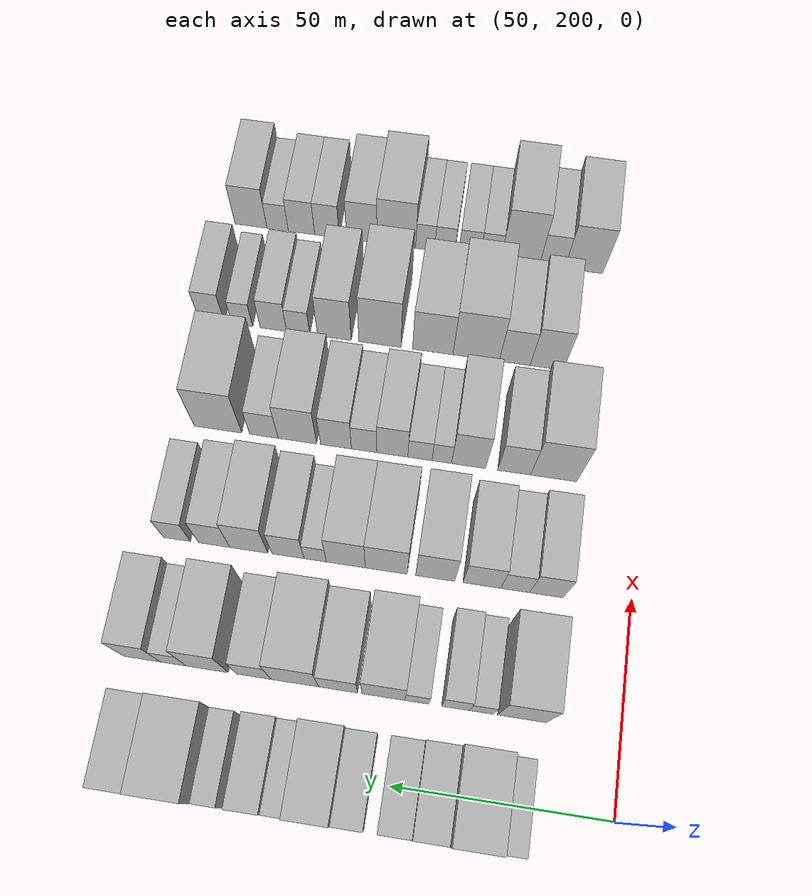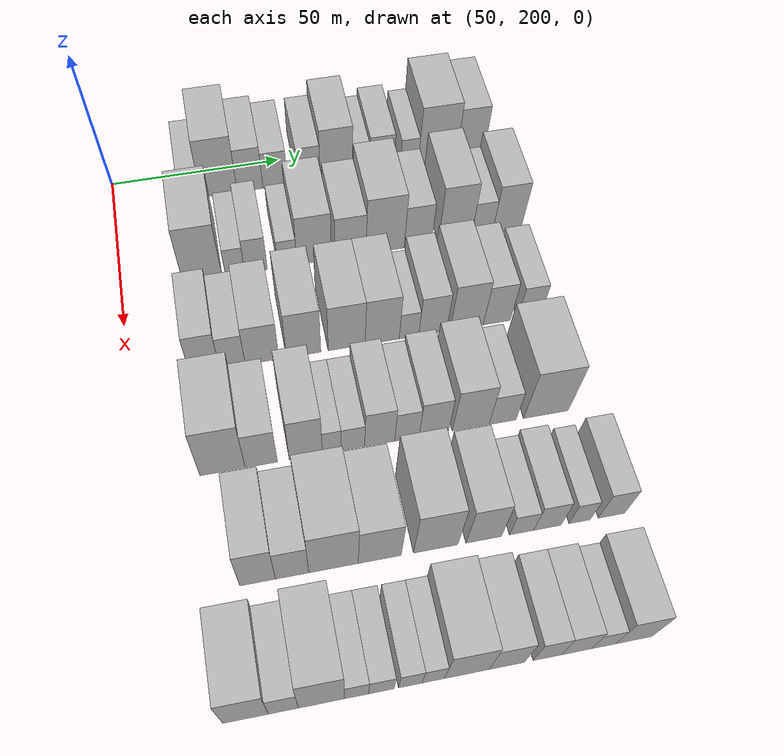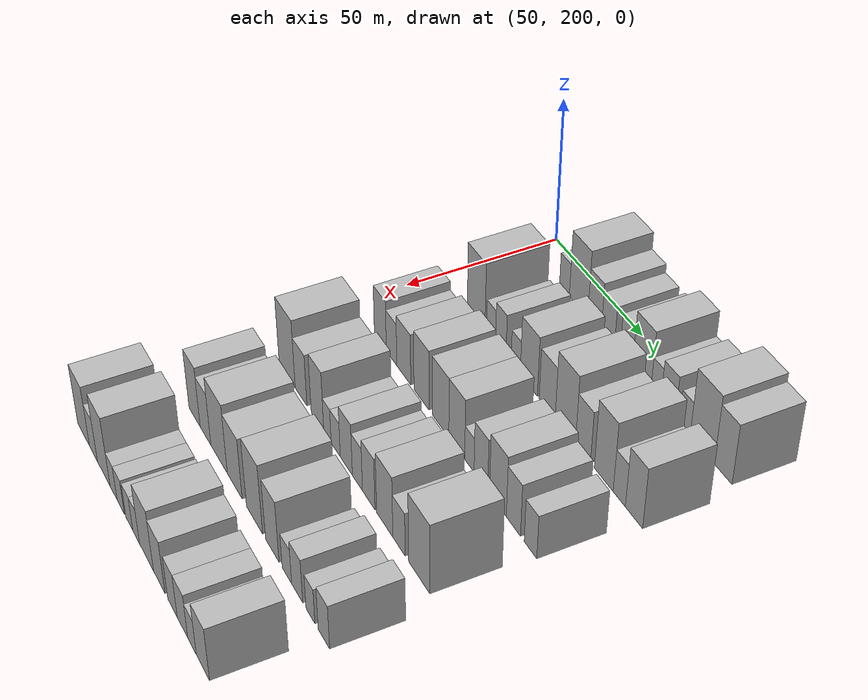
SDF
<sdf version="1.6">
 <world name="default">
  <model name="building_82">
   <static>1</static>
   <pose>50.0000 222.5530 0 0.000000 0.000000 0.000000</pose>
   <link name="link">
    <pose>0 0 6.00 0 0 0</pose>
    <collision name="collision"><geometry><box><size>20.0000 5.8281 12.0000</size></box></geometry></collision>
    <visual name="visual">
     <cast_shadows>0</cast_shadows>
     <geometry><box><size>20.0000 5.8281 12.0000</size></box></geometry>
     <material>
      <script>
       <uri>model://HANNAS_wall/materials/scripts</uri>
       <uri>model://HANNAS_wall/materials/textures</uri>
       <name>vrc/HANNAS_wall</name>
      </script>
     </material>
    </visual>
   </link>
  </model>
  <model name="building_83">
   <static>1</static>
   <pose>50.0000 230.8259 0 0.000000 0.000000 0.000000</pose>
   <link name="link">
    <pose>0 0 12.00 0 0 0</pose>
    <collision name="collision"><geometry><box><size>20.0000 10.7177 24.0000</size></box></geometry></collision>
    <visual name="visual">
     <cast_shadows>0</cast_shadows>
     <geometry><box><size>20.0000 10.7177 24.0000</size></box></geometry>
     <material>
      <script>
       <uri>model://HANNAS_wall/materials/scripts</uri>
       <uri>model://HANNAS_wall/materials/textures</uri>
       <name>vrc/HANNAS_wall</name>
      </script>
     </material>
    </visual>
   </link>
  </model>
  <model name="building_84">
   <static>1</static>
   <pose>50.0000 240.0393 0 0.000000 0.000000 0.000000</pose>
   <link name="link">
    <pose>0 0 9.00 0 0 0</pose>
    <collision name="collision"><geometry><box><size>20.0000 7.7092 18.0000</size></box></geometry></collision>
    <visual name="visual">
     <cast_shadows>0</cast_shadows>
     <geometry><box><size>20.0000 7.7092 18.0000</size></box></geometry>
     <material>
      <script>
       <uri>model://HANNAS_wall/materials/scripts</uri>
       <uri>model://HANNAS_wall/materials/textures</uri>
       <name>vrc/HANNAS_wall</name>
      </script>
     </material>
    </visual>
   </link>
  </model>
  <model name="building_85">
   <static>1</static>
   <pose>50.0000 247.5469 0 0.000000 0.000000 0.000000</pose>
   <link name="link">
    <pose>0 0 7.50 0 0 0</pose>
    <collision name="collision"><geometry><box><size>20.0000 7.3059 15.0000</size></box></geometry></collision>
    <visual name="visual">
     <cast_shadows>0</cast_shadows>
     <geometry><box><size>20.0000 7.3059 15.0000</size></box></geometry>
     <material>
      <script>
       <uri>model://HANNAS_wall/materials/scripts</uri>
       <uri>model://HANNAS_wall/materials/textures</uri>
       <name>vrc/HANNAS_wall</name>
      </script>
     </material>
    </visual>
   </link>
  </model>
  <model name="building_86">
   <static>1</static>
   <pose>50.0000 257.6532 0 0.000000 0.000000 0.000000</pose>
   <link name="link">
    <pose>0 0 7.50 0 0 0</pose>
    <collision name="collision"><geometry><box><size>20.0000 6.9068 15.0000</size></box></geometry></collision>
    <visual name="visual">
     <cast_shadows>0</cast_shadows>
     <geometry><box><size>20.0000 6.9068 15.0000</size></box></geometry>
     <material>
      <script>
       <uri>model://HANNAS_wall/materials/scripts</uri>
       <uri>model://HANNAS_wall/materials/textures</uri>
       <name>vrc/HANNAS_wall</name>
      </script>
     </material>
    </visual>
   </link>
  </model>
  <model name="building_87">
   <static>1</static>
   <pose>50.0000 266.0132 0 0.000000 0.000000 0.000000</pose>
   <link name="link">
    <pose>0 0 10.50 0 0 0</pose>
    <collision name="collision"><geometry><box><size>20.0000 9.8132 21.0000</size></box></geometry></collision>
    <visual name="visual">
     <cast_shadows>0</cast_shadows>
     <geometry><box><size>20.0000 9.8132 21.0000</size></box></geometry>
     <material>
      <script>
       <uri>model://HANNAS_wall/materials/scripts</uri>
       <uri>model://HANNAS_wall/materials/textures</uri>
       <name>vrc/HANNAS_wall</name>
      </script>
     </material>
    </visual>
   </link>
  </model>
  <model name="building_88">
   <static>1</static>
   <pose>50.0000 273.5310 0 0.000000 0.000000 0.000000</pose>
   <link name="link">
    <pose>0 0 6.00 0 0 0</pose>
    <collision name="collision"><geometry><box><size>20.0000 5.2224 12.0000</size></box></geometry></collision>
    <visual name="visual">
     <cast_shadows>0</cast_shadows>
     <geometry><box><size>20.0000 5.2224 12.0000</size></box></geometry>
     <material>
      <script>
       <uri>model://HANNAS_wall/materials/scripts</uri>
       <uri>model://HANNAS_wall/materials/textures</uri>
       <name>vrc/HANNAS_wall</name>
      </script>
     </material>
    </visual>
   </link>
  </model>
  <model name="building_89">
   <static>1</static>
   <pose>50.0000 279.8718 0 0.000000 0.000000 0.000000</pose>
   <link name="link">
    <pose>0 0 7.50 0 0 0</pose>
    <collision name="collision"><geometry><box><size>20.0000 7.4591 15.0000</size></box></geometry></collision>
    <visual name="visual">
     <cast_shadows>0</cast_shadows>
     <geometry><box><size>20.0000 7.4591 15.0000</size></box></geometry>
     <material>
      <script>
       <uri>model://HANNAS_wall/materials/scripts</uri>
       <uri>model://HANNAS_wall/materials/textures</uri>
       <name>vrc/HANNAS_wall</name>
      </script>
     </material>
    </visual>
   </link>
  </model>
  <model name="building_90">
   <static>1</static>
   <pose>50.0000 288.3421 0 0.000000 0.000000 0.000000</pose>
   <link name="link">
    <pose>0 0 6.00 0 0 0</pose>
    <collision name="collision"><geometry><box><size>20.0000 5.4815 12.0000</size></box></geometry></collision>
    <visual name="visual">
     <cast_shadows>0</cast_shadows>
     <geometry><box><size>20.0000 5.4815 12.0000</size></box></geometry>
     <material>
      <script>
       <uri>model://HANNAS_wall/materials/scripts</uri>
       <uri>model://HANNAS_wall/materials/textures</uri>
       <name>vrc/HANNAS_wall</name>
      </script>
     </material>
    </visual>
   </link>
  </model>
  <model name="building_91">
   <static>1</static>
   <pose>50.0000 296.9958 0 0.000000 0.000000 0.000000</pose>
   <link name="link">
    <pose>0 0 12.00 0 0 0</pose>
    <collision name="collision"><geometry><box><size>20.0000 11.8260 24.0000</size></box></geometry></collision>
    <visual name="visual">
     <cast_shadows>0</cast_shadows>
     <geometry><box><size>20.0000 11.8260 24.0000</size></box></geometry>
     <material>
      <script>
       <uri>model://HANNAS_wall/materials/scripts</uri>
       <uri>model://HANNAS_wall/materials/textures</uri>
       <name>vrc/HANNAS_wall</name>
      </script>
     </material>
    </visual>
   </link>
  </model>
  <model name="building_92">
   <static>1</static>
   <pose>50.0000 307.1721 0 0.000000 0.000000 0.000000</pose>
   <link name="link">
    <pose>0 0 10.50 0 0 0</pose>
    <collision name="collision"><geometry><box><size>20.0000 8.5265 21.0000</size></box></geometry></collision>
    <visual name="visual">
     <cast_shadows>0</cast_shadows>
     <geometry><box><size>20.0000 8.5265 21.0000</size></box></geometry>
     <material>
      <script>
       <uri>model://HANNAS_wall/materials/scripts</uri>
       <uri>model://HANNAS_wall/materials/textures</uri>
       <name>vrc/HANNAS_wall</name>
      </script>
     </material>
    </visual>
   </link>
  </model>
  <model name="building_186">
   <static>1</static>
   <pose>79.0000 222.6134 0 0.000000 0.000000 0.000000</pose>
   <link name="link">
    <pose>0 0 12.00 0 0 0</pose>
    <collision name="collision"><geometry><box><size>20.0000 10.9888 24.0000</size></box></geometry></collision>
    <visual name="visual">
     <cast_shadows>0</cast_shadows>
     <geometry><box><size>20.0000 10.9888 24.0000</size></box></geometry>
     <material>
      <script>
       <uri>model://HANNAS_wall/materials/scripts</uri>
       <uri>model://HANNAS_wall/materials/textures</uri>
       <name>vrc/HANNAS_wall</name>
      </script>
     </material>
    </visual>
   </link>
  </model>
  <model name="building_187">
   <static>1</static>
   <pose>79.0000 231.8289 0 0.000000 0.000000 0.000000</pose>
   <link name="link">
    <pose>0 0 6.00 0 0 0</pose>
    <collision name="collision"><geometry><box><size>20.0000 5.4422 12.0000</size></box></geometry></collision>
    <visual name="visual">
     <cast_shadows>0</cast_shadows>
     <geometry><box><size>20.0000 5.4422 12.0000</size></box></geometry>
     <material>
      <script>
       <uri>model://HANNAS_wall/materials/scripts</uri>
       <uri>model://HANNAS_wall/materials/textures</uri>
       <name>vrc/HANNAS_wall</name>
      </script>
     </material>
    </visual>
   </link>
  </model>
  <model name="building_188">
   <static>1</static>
   <pose>79.0000 237.7253 0 0.000000 0.000000 0.000000</pose>
   <link name="link">
    <pose>0 0 7.50 0 0 0</pose>
    <collision name="collision"><geometry><box><size>20.0000 6.3506 15.0000</size></box></geometry></collision>
    <visual name="visual">
     <cast_shadows>0</cast_shadows>
     <geometry><box><size>20.0000 6.3506 15.0000</size></box></geometry>
     <material>
      <script>
       <uri>model://HANNAS_wall/materials/scripts</uri>
       <uri>model://HANNAS_wall/materials/textures</uri>
       <name>vrc/HANNAS_wall</name>
      </script>
     </material>
    </visual>
   </link>
  </model>
  <model name="building_189">
   <static>1</static>
   <pose>79.0000 246.6190 0 0.000000 0.000000 0.000000</pose>
   <link name="link">
    <pose>0 0 6.00 0 0 0</pose>
    <collision name="collision"><geometry><box><size>20.0000 5.4369 12.0000</size></box></geometry></collision>
    <visual name="visual">
     <cast_shadows>0</cast_shadows>
     <geometry><box><size>20.0000 5.4369 12.0000</size></box></geometry>
     <material>
      <script>
       <uri>model://HANNAS_wall/materials/scripts</uri>
       <uri>model://HANNAS_wall/materials/textures</uri>
       <name>vrc/HANNAS_wall</name>
      </script>
     </material>
    </visual>
   </link>
  </model>
  <model name="building_190">
   <static>1</static>
   <pose>79.0000 254.2797 0 0.000000 0.000000 0.000000</pose>
   <link name="link">
    <pose>0 0 10.50 0 0 0</pose>
    <collision name="collision"><geometry><box><size>20.0000 9.8844 21.0000</size></box></geometry></collision>
    <visual name="visual">
     <cast_shadows>0</cast_shadows>
     <geometry><box><size>20.0000 9.8844 21.0000</size></box></geometry>
     <material>
      <script>
       <uri>model://HANNAS_wall/materials/scripts</uri>
       <uri>model://HANNAS_wall/materials/textures</uri>
       <name>vrc/HANNAS_wall</name>
      </script>
     </material>
    </visual>
   </link>
  </model>
  <model name="building_191">
   <static>1</static>
   <pose>79.0000 264.7175 0 0.000000 0.000000 0.000000</pose>
   <link name="link">
    <pose>0 0 9.00 0 0 0</pose>
    <collision name="collision"><geometry><box><size>20.0000 8.9913 18.0000</size></box></geometry></collision>
    <visual name="visual">
     <cast_shadows>0</cast_shadows>
     <geometry><box><size>20.0000 8.9913 18.0000</size></box></geometry>
     <material>
      <script>
       <uri>model://HANNAS_wall/materials/scripts</uri>
       <uri>model://HANNAS_wall/materials/textures</uri>
       <name>vrc/HANNAS_wall</name>
      </script>
     </material>
    </visual>
   </link>
  </model>
  <model name="building_192">
   <static>1</static>
   <pose>79.0000 274.7590 0 0.000000 0.000000 0.000000</pose>
   <link name="link">
    <pose>0 0 12.00 0 0 0</pose>
    <collision name="collision"><geometry><box><size>20.0000 11.0916 24.0000</size></box></geometry></collision>
    <visual name="visual">
     <cast_shadows>0</cast_shadows>
     <geometry><box><size>20.0000 11.0916 24.0000</size></box></geometry>
     <material>
      <script>
       <uri>model://HANNAS_wall/materials/scripts</uri>
       <uri>model://HANNAS_wall/materials/textures</uri>
       <name>vrc/HANNAS_wall</name>
      </script>
     </material>
    </visual>
   </link>
  </model>
  <model name="building_193">
   <static>1</static>
   <pose>79.0000 284.3001 0 0.000000 0.000000 0.000000</pose>
   <link name="link">
    <pose>0 0 9.00 0 0 0</pose>
    <collision name="collision"><geometry><box><size>20.0000 7.9905 18.0000</size></box></geometry></collision>
    <visual name="visual">
     <cast_shadows>0</cast_shadows>
     <geometry><box><size>20.0000 7.9905 18.0000</size></box></geometry>
     <material>
      <script>
       <uri>model://HANNAS_wall/materials/scripts</uri>
       <uri>model://HANNAS_wall/materials/textures</uri>
       <name>vrc/HANNAS_wall</name>
      </script>
     </material>
    </visual>
   </link>
  </model>
  <model name="building_194">
   <static>1</static>
   <pose>79.0000 295.1735 0 0.000000 0.000000 0.000000</pose>
   <link name="link">
    <pose>0 0 12.00 0 0 0</pose>
    <collision name="collision"><geometry><box><size>20.0000 9.7564 24.0000</size></box></geometry></collision>
    <visual name="visual">
     <cast_shadows>0</cast_shadows>
     <geometry><box><size>20.0000 9.7564 24.0000</size></box></geometry>
     <material>
      <script>
       <uri>model://HANNAS_wall/materials/scripts</uri>
       <uri>model://HANNAS_wall/materials/textures</uri>
       <name>vrc/HANNAS_wall</name>
      </script>
     </material>
    </visual>
   </link>
  </model>
  <model name="building_195">
   <static>1</static>
   <pose>79.0000 303.1252 0 0.000000 0.000000 0.000000</pose>
   <link name="link">
    <pose>0 0 7.50 0 0 0</pose>
    <collision name="collision"><geometry><box><size>20.0000 6.1470 15.0000</size></box></geometry></collision>
    <visual name="visual">
     <cast_shadows>0</cast_shadows>
     <geometry><box><size>20.0000 6.1470 15.0000</size></box></geometry>
     <material>
      <script>
       <uri>model://HANNAS_wall/materials/scripts</uri>
       <uri>model://HANNAS_wall/materials/textures</uri>
       <name>vrc/HANNAS_wall</name>
      </script>
     </material>
    </visual>
   </link>
  </model>
  <model name="building_196">
   <static>1</static>
   <pose>79.0000 310.4824 0 0.000000 0.000000 0.000000</pose>
   <link name="link">
    <pose>0 0 10.50 0 0 0</pose>
    <collision name="collision"><geometry><box><size>20.0000 8.5674 21.0000</size></box></geometry></collision>
    <visual name="visual">
     <cast_shadows>0</cast_shadows>
     <geometry><box><size>20.0000 8.5674 21.0000</size></box></geometry>
     <material>
      <script>
       <uri>model://HANNAS_wall/materials/scripts</uri>
       <uri>model://HANNAS_wall/materials/textures</uri>
       <name>vrc/HANNAS_wall</name>
      </script>
     </material>
    </visual>
   </link>
  </model>
  <model name="building_301">
   <static>1</static>
   <pose>108.0000 219.9621 0 0.000000 0.000000 0.000000</pose>
   <link name="link">
    <pose>0 0 9.00 0 0 0</pose>
    <collision name="collision"><geometry><box><size>20.0000 7.9144 18.0000</size></box></geometry></collision>
    <visual name="visual">
     <cast_shadows>0</cast_shadows>
     <geometry><box><size>20.0000 7.9144 18.0000</size></box></geometry>
     <material>
      <script>
       <uri>model://HANNAS_wall/materials/scripts</uri>
       <uri>model://HANNAS_wall/materials/textures</uri>
       <name>vrc/HANNAS_wall</name>
      </script>
     </material>
    </visual>
   </link>
  </model>
  <model name="building_302">
   <static>1</static>
   <pose>108.0000 227.3372 0 0.000000 0.000000 0.000000</pose>
   <link name="link">
    <pose>0 0 7.50 0 0 0</pose>
    <collision name="collision"><geometry><box><size>20.0000 6.8358 15.0000</size></box></geometry></collision>
    <visual name="visual">
     <cast_shadows>0</cast_shadows>
     <geometry><box><size>20.0000 6.8358 15.0000</size></box></geometry>
     <material>
      <script>
       <uri>model://HANNAS_wall/materials/scripts</uri>
       <uri>model://HANNAS_wall/materials/textures</uri>
       <name>vrc/HANNAS_wall</name>
      </script>
     </material>
    </visual>
   </link>
  </model>
  <model name="building_303">
   <static>1</static>
   <pose>108.0000 235.2460 0 0.000000 0.000000 0.000000</pose>
   <link name="link">
    <pose>0 0 9.00 0 0 0</pose>
    <collision name="collision"><geometry><box><size>20.0000 8.9817 18.0000</size></box></geometry></collision>
    <visual name="visual">
     <cast_shadows>0</cast_shadows>
     <geometry><box><size>20.0000 8.9817 18.0000</size></box></geometry>
     <material>
      <script>
       <uri>model://HANNAS_wall/materials/scripts</uri>
       <uri>model://HANNAS_wall/materials/textures</uri>
       <name>vrc/HANNAS_wall</name>
      </script>
     </material>
    </visual>
   </link>
  </model>
  <model name="building_304">
   <static>1</static>
   <pose>108.0000 246.3879 0 0.000000 0.000000 0.000000</pose>
   <link name="link">
    <pose>0 0 10.50 0 0 0</pose>
    <collision name="collision"><geometry><box><size>20.0000 9.3022 21.0000</size></box></geometry></collision>
    <visual name="visual">
     <cast_shadows>0</cast_shadows>
     <geometry><box><size>20.0000 9.3022 21.0000</size></box></geometry>
     <material>
      <script>
       <uri>model://HANNAS_wall/materials/scripts</uri>
       <uri>model://HANNAS_wall/materials/textures</uri>
       <name>vrc/HANNAS_wall</name>
      </script>
     </material>
    </visual>
   </link>
  </model>
  <model name="building_305">
   <static>1</static>
   <pose>108.0000 258.0661 0 0.000000 0.000000 0.000000</pose>
   <link name="link">
    <pose>0 0 10.50 0 0 0</pose>
    <collision name="collision"><geometry><box><size>20.0000 10.0541 21.0000</size></box></geometry></collision>
    <visual name="visual">
     <cast_shadows>0</cast_shadows>
     <geometry><box><size>20.0000 10.0541 21.0000</size></box></geometry>
     <material>
      <script>
       <uri>model://HANNAS_wall/materials/scripts</uri>
       <uri>model://HANNAS_wall/materials/textures</uri>
       <name>vrc/HANNAS_wall</name>
      </script>
     </material>
    </visual>
   </link>
  </model>
  <model name="building_306">
   <static>1</static>
   <pose>108.0000 267.7663 0 0.000000 0.000000 0.000000</pose>
   <link name="link">
    <pose>0 0 10.50 0 0 0</pose>
    <collision name="collision"><geometry><box><size>20.0000 9.3463 21.0000</size></box></geometry></collision>
    <visual name="visual">
     <cast_shadows>0</cast_shadows>
     <geometry><box><size>20.0000 9.3463 21.0000</size></box></geometry>
     <material>
      <script>
       <uri>model://HANNAS_wall/materials/scripts</uri>
       <uri>model://HANNAS_wall/materials/textures</uri>
       <name>vrc/HANNAS_wall</name>
      </script>
     </material>
    </visual>
   </link>
  </model>
  <model name="building_307">
   <static>1</static>
   <pose>108.0000 275.1324 0 0.000000 0.000000 0.000000</pose>
   <link name="link">
    <pose>0 0 6.00 0 0 0</pose>
    <collision name="collision"><geometry><box><size>20.0000 5.3858 12.0000</size></box></geometry></collision>
    <visual name="visual">
     <cast_shadows>0</cast_shadows>
     <geometry><box><size>20.0000 5.3858 12.0000</size></box></geometry>
     <material>
      <script>
       <uri>model://HANNAS_wall/materials/scripts</uri>
       <uri>model://HANNAS_wall/materials/textures</uri>
       <name>vrc/HANNAS_wall</name>
      </script>
     </material>
    </visual>
   </link>
  </model>
  <model name="building_308">
   <static>1</static>
   <pose>108.0000 281.6903 0 0.000000 0.000000 0.000000</pose>
   <link name="link">
    <pose>0 0 9.00 0 0 0</pose>
    <collision name="collision"><geometry><box><size>20.0000 7.7300 18.0000</size></box></geometry></collision>
    <visual name="visual">
     <cast_shadows>0</cast_shadows>
     <geometry><box><size>20.0000 7.7300 18.0000</size></box></geometry>
     <material>
      <script>
       <uri>model://HANNAS_wall/materials/scripts</uri>
       <uri>model://HANNAS_wall/materials/textures</uri>
       <name>vrc/HANNAS_wall</name>
      </script>
     </material>
    </visual>
   </link>
  </model>
  <model name="building_309">
   <static>1</static>
   <pose>108.0000 291.1767 0 0.000000 0.000000 0.000000</pose>
   <link name="link">
    <pose>0 0 10.50 0 0 0</pose>
    <collision name="collision"><geometry><box><size>20.0000 9.2430 21.0000</size></box></geometry></collision>
    <visual name="visual">
     <cast_shadows>0</cast_shadows>
     <geometry><box><size>20.0000 9.2430 21.0000</size></box></geometry>
     <material>
      <script>
       <uri>model://HANNAS_wall/materials/scripts</uri>
       <uri>model://HANNAS_wall/materials/textures</uri>
       <name>vrc/HANNAS_wall</name>
      </script>
     </material>
    </visual>
   </link>
  </model>
  <model name="building_310">
   <static>1</static>
   <pose>108.0000 299.6087 0 0.000000 0.000000 0.000000</pose>
   <link name="link">
    <pose>0 0 9.00 0 0 0</pose>
    <collision name="collision"><geometry><box><size>20.0000 7.6210 18.0000</size></box></geometry></collision>
    <visual name="visual">
     <cast_shadows>0</cast_shadows>
     <geometry><box><size>20.0000 7.6210 18.0000</size></box></geometry>
     <material>
      <script>
       <uri>model://HANNAS_wall/materials/scripts</uri>
       <uri>model://HANNAS_wall/materials/textures</uri>
       <name>vrc/HANNAS_wall</name>
      </script>
     </material>
    </visual>
   </link>
  </model>
  <model name="building_311">
   <static>1</static>
   <pose>108.0000 308.7111 0 0.000000 0.000000 0.000000</pose>
   <link name="link">
    <pose>0 0 7.50 0 0 0</pose>
    <collision name="collision"><geometry><box><size>20.0000 6.5838 15.0000</size></box></geometry></collision>
    <visual name="visual">
     <cast_shadows>0</cast_shadows>
     <geometry><box><size>20.0000 6.5838 15.0000</size></box></geometry>
     <material>
      <script>
       <uri>model://HANNAS_wall/materials/scripts</uri>
       <uri>model://HANNAS_wall/materials/textures</uri>
       <name>vrc/HANNAS_wall</name>
      </script>
     </material>
    </visual>
   </link>
  </model>
  <model name="building_405">
   <static>1</static>
   <pose>137.0000 221.1349 0 0.000000 0.000000 0.000000</pose>
   <link name="link">
    <pose>0 0 12.00 0 0 0</pose>
    <collision name="collision"><geometry><box><size>20.0000 11.3285 24.0000</size></box></geometry></collision>
    <visual name="visual">
     <cast_shadows>0</cast_shadows>
     <geometry><box><size>20.0000 11.3285 24.0000</size></box></geometry>
     <material>
      <script>
       <uri>model://HANNAS_wall/materials/scripts</uri>
       <uri>model://HANNAS_wall/materials/textures</uri>
       <name>vrc/HANNAS_wall</name>
      </script>
     </material>
    </visual>
   </link>
  </model>
  <model name="building_406">
   <static>1</static>
   <pose>137.0000 230.8446 0 0.000000 0.000000 0.000000</pose>
   <link name="link">
    <pose>0 0 9.00 0 0 0</pose>
    <collision name="collision"><geometry><box><size>20.0000 8.0909 18.0000</size></box></geometry></collision>
    <visual name="visual">
     <cast_shadows>0</cast_shadows>
     <geometry><box><size>20.0000 8.0909 18.0000</size></box></geometry>
     <material>
      <script>
       <uri>model://HANNAS_wall/materials/scripts</uri>
       <uri>model://HANNAS_wall/materials/textures</uri>
       <name>vrc/HANNAS_wall</name>
      </script>
     </material>
    </visual>
   </link>
  </model>
  <model name="building_407">
   <static>1</static>
   <pose>137.0000 242.1013 0 0.000000 0.000000 0.000000</pose>
   <link name="link">
    <pose>0 0 10.50 0 0 0</pose>
    <collision name="collision"><geometry><box><size>20.0000 8.4226 21.0000</size></box></geometry></collision>
    <visual name="visual">
     <cast_shadows>0</cast_shadows>
     <geometry><box><size>20.0000 8.4226 21.0000</size></box></geometry>
     <material>
      <script>
       <uri>model://HANNAS_wall/materials/scripts</uri>
       <uri>model://HANNAS_wall/materials/textures</uri>
       <name>vrc/HANNAS_wall</name>
      </script>
     </material>
    </visual>
   </link>
  </model>
  <model name="building_408">
   <static>1</static>
   <pose>137.0000 248.7253 0 0.000000 0.000000 0.000000</pose>
   <link name="link">
    <pose>0 0 6.00 0 0 0</pose>
    <collision name="collision"><geometry><box><size>20.0000 4.8253 12.0000</size></box></geometry></collision>
    <visual name="visual">
     <cast_shadows>0</cast_shadows>
     <geometry><box><size>20.0000 4.8253 12.0000</size></box></geometry>
     <material>
      <script>
       <uri>model://HANNAS_wall/materials/scripts</uri>
       <uri>model://HANNAS_wall/materials/textures</uri>
       <name>vrc/HANNAS_wall</name>
      </script>
     </material>
    </visual>
   </link>
  </model>
  <model name="building_409">
   <static>1</static>
   <pose>137.0000 254.1273 0 0.000000 0.000000 0.000000</pose>
   <link name="link">
    <pose>0 0 6.00 0 0 0</pose>
    <collision name="collision"><geometry><box><size>20.0000 5.9788 12.0000</size></box></geometry></collision>
    <visual name="visual">
     <cast_shadows>0</cast_shadows>
     <geometry><box><size>20.0000 5.9788 12.0000</size></box></geometry>
     <material>
      <script>
       <uri>model://HANNAS_wall/materials/scripts</uri>
       <uri>model://HANNAS_wall/materials/textures</uri>
       <name>vrc/HANNAS_wall</name>
      </script>
     </material>
    </visual>
   </link>
  </model>
  <model name="building_410">
   <static>1</static>
   <pose>137.0000 260.9754 0 0.000000 0.000000 0.000000</pose>
   <link name="link">
    <pose>0 0 9.00 0 0 0</pose>
    <collision name="collision"><geometry><box><size>20.0000 7.7174 18.0000</size></box></geometry></collision>
    <visual name="visual">
     <cast_shadows>0</cast_shadows>
     <geometry><box><size>20.0000 7.7174 18.0000</size></box></geometry>
     <material>
      <script>
       <uri>model://HANNAS_wall/materials/scripts</uri>
       <uri>model://HANNAS_wall/materials/textures</uri>
       <name>vrc/HANNAS_wall</name>
      </script>
     </material>
    </visual>
   </link>
  </model>
  <model name="building_411">
   <static>1</static>
   <pose>137.0000 268.0005 0 0.000000 0.000000 0.000000</pose>
   <link name="link">
    <pose>0 0 7.50 0 0 0</pose>
    <collision name="collision"><geometry><box><size>20.0000 6.3327 15.0000</size></box></geometry></collision>
    <visual name="visual">
     <cast_shadows>0</cast_shadows>
     <geometry><box><size>20.0000 6.3327 15.0000</size></box></geometry>
     <material>
      <script>
       <uri>model://HANNAS_wall/materials/scripts</uri>
       <uri>model://HANNAS_wall/materials/textures</uri>
       <name>vrc/HANNAS_wall</name>
      </script>
     </material>
    </visual>
   </link>
  </model>
  <model name="building_412">
   <static>1</static>
   <pose>137.0000 275.0151 0 0.000000 0.000000 0.000000</pose>
   <link name="link">
    <pose>0 0 9.00 0 0 0</pose>
    <collision name="collision"><geometry><box><size>20.0000 7.6966 18.0000</size></box></geometry></collision>
    <visual name="visual">
     <cast_shadows>0</cast_shadows>
     <geometry><box><size>20.0000 7.6966 18.0000</size></box></geometry>
     <material>
      <script>
       <uri>model://HANNAS_wall/materials/scripts</uri>
       <uri>model://HANNAS_wall/materials/textures</uri>
       <name>vrc/HANNAS_wall</name>
      </script>
     </material>
    </visual>
   </link>
  </model>
  <model name="building_413">
   <static>1</static>
   <pose>137.0000 284.6923 0 0.000000 0.000000 0.000000</pose>
   <link name="link">
    <pose>0 0 10.50 0 0 0</pose>
    <collision name="collision"><geometry><box><size>20.0000 9.6579 21.0000</size></box></geometry></collision>
    <visual name="visual">
     <cast_shadows>0</cast_shadows>
     <geometry><box><size>20.0000 9.6579 21.0000</size></box></geometry>
     <material>
      <script>
       <uri>model://HANNAS_wall/materials/scripts</uri>
       <uri>model://HANNAS_wall/materials/textures</uri>
       <name>vrc/HANNAS_wall</name>
      </script>
     </material>
    </visual>
   </link>
  </model>
  <model name="building_414">
   <static>1</static>
   <pose>137.0000 293.1047 0 0.000000 0.000000 0.000000</pose>
   <link name="link">
    <pose>0 0 7.50 0 0 0</pose>
    <collision name="collision"><geometry><box><size>20.0000 7.1669 15.0000</size></box></geometry></collision>
    <visual name="visual">
     <cast_shadows>0</cast_shadows>
     <geometry><box><size>20.0000 7.1669 15.0000</size></box></geometry>
     <material>
      <script>
       <uri>model://HANNAS_wall/materials/scripts</uri>
       <uri>model://HANNAS_wall/materials/textures</uri>
       <name>vrc/HANNAS_wall</name>
      </script>
     </material>
    </visual>
   </link>
  </model>
  <model name="building_415">
   <static>1</static>
   <pose>137.0000 304.6683 0 0.000000 0.000000 0.000000</pose>
   <link name="link">
    <pose>0 0 12.00 0 0 0</pose>
    <collision name="collision"><geometry><box><size>20.0000 11.9603 24.0000</size></box></geometry></collision>
    <visual name="visual">
     <cast_shadows>0</cast_shadows>
     <geometry><box><size>20.0000 11.9603 24.0000</size></box></geometry>
     <material>
      <script>
       <uri>model://HANNAS_wall/materials/scripts</uri>
       <uri>model://HANNAS_wall/materials/textures</uri>
       <name>vrc/HANNAS_wall</name>
      </script>
     </material>
    </visual>
   </link>
  </model>
  <model name="building_526">
   <static>1</static>
   <pose>166.0000 225.7831 0 0.000000 0.000000 0.000000</pose>
   <link name="link">
    <pose>0 0 10.50 0 0 0</pose>
    <collision name="collision"><geometry><box><size>20.0000 8.4193 21.0000</size></box></geometry></collision>
    <visual name="visual">
     <cast_shadows>0</cast_shadows>
     <geometry><box><size>20.0000 8.4193 21.0000</size></box></geometry>
     <material>
      <script>
       <uri>model://HANNAS_wall/materials/scripts</uri>
       <uri>model://HANNAS_wall/materials/textures</uri>
       <name>vrc/HANNAS_wall</name>
      </script>
     </material>
    </visual>
   </link>
  </model>
  <model name="building_527">
   <static>1</static>
   <pose>166.0000 233.9442 0 0.000000 0.000000 0.000000</pose>
   <link name="link">
    <pose>0 0 9.00 0 0 0</pose>
    <collision name="collision"><geometry><box><size>20.0000 7.9030 18.0000</size></box></geometry></collision>
    <visual name="visual">
     <cast_shadows>0</cast_shadows>
     <geometry><box><size>20.0000 7.9030 18.0000</size></box></geometry>
     <material>
      <script>
       <uri>model://HANNAS_wall/materials/scripts</uri>
       <uri>model://HANNAS_wall/materials/textures</uri>
       <name>vrc/HANNAS_wall</name>
      </script>
     </material>
    </visual>
   </link>
  </model>
  <model name="building_528">
   <static>1</static>
   <pose>166.0000 243.8197 0 0.000000 0.000000 0.000000</pose>
   <link name="link">
    <pose>0 0 12.00 0 0 0</pose>
    <collision name="collision"><geometry><box><size>20.0000 11.8479 24.0000</size></box></geometry></collision>
    <visual name="visual">
     <cast_shadows>0</cast_shadows>
     <geometry><box><size>20.0000 11.8479 24.0000</size></box></geometry>
     <material>
      <script>
       <uri>model://HANNAS_wall/materials/scripts</uri>
       <uri>model://HANNAS_wall/materials/textures</uri>
       <name>vrc/HANNAS_wall</name>
      </script>
     </material>
    </visual>
   </link>
  </model>
  <model name="building_529">
   <static>1</static>
   <pose>166.0000 254.9306 0 0.000000 0.000000 0.000000</pose>
   <link name="link">
    <pose>0 0 10.50 0 0 0</pose>
    <collision name="collision"><geometry><box><size>20.0000 10.3740 21.0000</size></box></geometry></collision>
    <visual name="visual">
     <cast_shadows>0</cast_shadows>
     <geometry><box><size>20.0000 10.3740 21.0000</size></box></geometry>
     <material>
      <script>
       <uri>model://HANNAS_wall/materials/scripts</uri>
       <uri>model://HANNAS_wall/materials/textures</uri>
       <name>vrc/HANNAS_wall</name>
      </script>
     </material>
    </visual>
   </link>
  </model>
  <model name="building_530">
   <static>1</static>
   <pose>166.0000 268.5409 0 0.000000 0.000000 0.000000</pose>
   <link name="link">
    <pose>0 0 12.00 0 0 0</pose>
    <collision name="collision"><geometry><box><size>20.0000 10.8465 24.0000</size></box></geometry></collision>
    <visual name="visual">
     <cast_shadows>0</cast_shadows>
     <geometry><box><size>20.0000 10.8465 24.0000</size></box></geometry>
     <material>
      <script>
       <uri>model://HANNAS_wall/materials/scripts</uri>
       <uri>model://HANNAS_wall/materials/textures</uri>
       <name>vrc/HANNAS_wall</name>
      </script>
     </material>
    </visual>
   </link>
  </model>
  <model name="building_531">
   <static>1</static>
   <pose>166.0000 280.3400 0 0.000000 0.000000 0.000000</pose>
   <link name="link">
    <pose>0 0 10.50 0 0 0</pose>
    <collision name="collision"><geometry><box><size>20.0000 8.7518 21.0000</size></box></geometry></collision>
    <visual name="visual">
     <cast_shadows>0</cast_shadows>
     <geometry><box><size>20.0000 8.7518 21.0000</size></box></geometry>
     <material>
      <script>
       <uri>model://HANNAS_wall/materials/scripts</uri>
       <uri>model://HANNAS_wall/materials/textures</uri>
       <name>vrc/HANNAS_wall</name>
      </script>
     </material>
    </visual>
   </link>
  </model>
  <model name="building_532">
   <static>1</static>
   <pose>166.0000 289.7140 0 0.000000 0.000000 0.000000</pose>
   <link name="link">
    <pose>0 0 6.00 0 0 0</pose>
    <collision name="collision"><geometry><box><size>20.0000 5.9960 12.0000</size></box></geometry></collision>
    <visual name="visual">
     <cast_shadows>0</cast_shadows>
     <geometry><box><size>20.0000 5.9960 12.0000</size></box></geometry>
     <material>
      <script>
       <uri>model://HANNAS_wall/materials/scripts</uri>
       <uri>model://HANNAS_wall/materials/textures</uri>
       <name>vrc/HANNAS_wall</name>
      </script>
     </material>
    </visual>
   </link>
  </model>
  <model name="building_533">
   <static>1</static>
   <pose>166.0000 296.1617 0 0.000000 0.000000 0.000000</pose>
   <link name="link">
    <pose>0 0 7.50 0 0 0</pose>
    <collision name="collision"><geometry><box><size>20.0000 6.8994 15.0000</size></box></geometry></collision>
    <visual name="visual">
     <cast_shadows>0</cast_shadows>
     <geometry><box><size>20.0000 6.8994 15.0000</size></box></geometry>
     <material>
      <script>
       <uri>model://HANNAS_wall/materials/scripts</uri>
       <uri>model://HANNAS_wall/materials/textures</uri>
       <name>vrc/HANNAS_wall</name>
      </script>
     </material>
    </visual>
   </link>
  </model>
  <model name="building_534">
   <static>1</static>
   <pose>166.0000 304.3071 0 0.000000 0.000000 0.000000</pose>
   <link name="link">
    <pose>0 0 6.00 0 0 0</pose>
    <collision name="collision"><geometry><box><size>20.0000 5.3914 12.0000</size></box></geometry></collision>
    <visual name="visual">
     <cast_shadows>0</cast_shadows>
     <geometry><box><size>20.0000 5.3914 12.0000</size></box></geometry>
     <material>
      <script>
       <uri>model://HANNAS_wall/materials/scripts</uri>
       <uri>model://HANNAS_wall/materials/textures</uri>
       <name>vrc/HANNAS_wall</name>
      </script>
     </material>
    </visual>
   </link>
  </model>
  <model name="building_535">
   <static>1</static>
   <pose>166.0000 312.3711 0 0.000000 0.000000 0.000000</pose>
   <link name="link">
    <pose>0 0 7.50 0 0 0</pose>
    <collision name="collision"><geometry><box><size>20.0000 6.7367 15.0000</size></box></geometry></collision>
    <visual name="visual">
     <cast_shadows>0</cast_shadows>
     <geometry><box><size>20.0000 6.7367 15.0000</size></box></geometry>
     <material>
      <script>
       <uri>model://HANNAS_wall/materials/scripts</uri>
       <uri>model://HANNAS_wall/materials/textures</uri>
       <name>vrc/HANNAS_wall</name>
      </script>
     </material>
    </visual>
   </link>
  </model>
  <model name="building_636">
   <static>1</static>
   <pose>195.0000 219.0265 0 0.000000 0.000000 0.000000</pose>
   <link name="link">
    <pose>0 0 10.50 0 0 0</pose>
    <collision name="collision"><geometry><box><size>20.0000 10.0086 21.0000</size></box></geometry></collision>
    <visual name="visual">
     <cast_shadows>0</cast_shadows>
     <geometry><box><size>20.0000 10.0086 21.0000</size></box></geometry>
     <material>
      <script>
       <uri>model://HANNAS_wall/materials/scripts</uri>
       <uri>model://HANNAS_wall/materials/textures</uri>
       <name>vrc/HANNAS_wall</name>
      </script>
     </material>
    </visual>
   </link>
  </model>
  <model name="building_637">
   <static>1</static>
   <pose>195.0000 227.3283 0 0.000000 0.000000 0.000000</pose>
   <link name="link">
    <pose>0 0 7.50 0 0 0</pose>
    <collision name="collision"><geometry><box><size>20.0000 6.5950 15.0000</size></box></geometry></collision>
    <visual name="visual">
     <cast_shadows>0</cast_shadows>
     <geometry><box><size>20.0000 6.5950 15.0000</size></box></geometry>
     <material>
      <script>
       <uri>model://HANNAS_wall/materials/scripts</uri>
       <uri>model://HANNAS_wall/materials/textures</uri>
       <name>vrc/HANNAS_wall</name>
      </script>
     </material>
    </visual>
   </link>
  </model>
  <model name="building_638">
   <static>1</static>
   <pose>195.0000 235.7259 0 0.000000 0.000000 0.000000</pose>
   <link name="link">
    <pose>0 0 12.00 0 0 0</pose>
    <collision name="collision"><geometry><box><size>20.0000 10.2002 24.0000</size></box></geometry></collision>
    <visual name="visual">
     <cast_shadows>0</cast_shadows>
     <geometry><box><size>20.0000 10.2002 24.0000</size></box></geometry>
     <material>
      <script>
       <uri>model://HANNAS_wall/materials/scripts</uri>
       <uri>model://HANNAS_wall/materials/textures</uri>
       <name>vrc/HANNAS_wall</name>
      </script>
     </material>
    </visual>
   </link>
  </model>
  <model name="building_639">
   <static>1</static>
   <pose>195.0000 243.5708 0 0.000000 0.000000 0.000000</pose>
   <link name="link">
    <pose>0 0 6.00 0 0 0</pose>
    <collision name="collision"><geometry><box><size>20.0000 5.4897 12.0000</size></box></geometry></collision>
    <visual name="visual">
     <cast_shadows>0</cast_shadows>
     <geometry><box><size>20.0000 5.4897 12.0000</size></box></geometry>
     <material>
      <script>
       <uri>model://HANNAS_wall/materials/scripts</uri>
       <uri>model://HANNAS_wall/materials/textures</uri>
       <name>vrc/HANNAS_wall</name>
      </script>
     </material>
    </visual>
   </link>
  </model>
  <model name="building_640">
   <static>1</static>
   <pose>195.0000 249.1935 0 0.000000 0.000000 0.000000</pose>
   <link name="link">
    <pose>0 0 6.00 0 0 0</pose>
    <collision name="collision"><geometry><box><size>20.0000 5.7557 12.0000</size></box></geometry></collision>
    <visual name="visual">
     <cast_shadows>0</cast_shadows>
     <geometry><box><size>20.0000 5.7557 12.0000</size></box></geometry>
     <material>
      <script>
       <uri>model://HANNAS_wall/materials/scripts</uri>
       <uri>model://HANNAS_wall/materials/textures</uri>
       <name>vrc/HANNAS_wall</name>
      </script>
     </material>
    </visual>
   </link>
  </model>
  <model name="building_641">
   <static>1</static>
   <pose>195.0000 255.7517 0 0.000000 0.000000 0.000000</pose>
   <link name="link">
    <pose>0 0 6.00 0 0 0</pose>
    <collision name="collision"><geometry><box><size>20.0000 5.3607 12.0000</size></box></geometry></collision>
    <visual name="visual">
     <cast_shadows>0</cast_shadows>
     <geometry><box><size>20.0000 5.3607 12.0000</size></box></geometry>
     <material>
      <script>
       <uri>model://HANNAS_wall/materials/scripts</uri>
       <uri>model://HANNAS_wall/materials/textures</uri>
       <name>vrc/HANNAS_wall</name>
      </script>
     </material>
    </visual>
   </link>
  </model>
  <model name="building_642">
   <static>1</static>
   <pose>195.0000 260.9664 0 0.000000 0.000000 0.000000</pose>
   <link name="link">
    <pose>0 0 6.00 0 0 0</pose>
    <collision name="collision"><geometry><box><size>20.0000 5.0689 12.0000</size></box></geometry></collision>
    <visual name="visual">
     <cast_shadows>0</cast_shadows>
     <geometry><box><size>20.0000 5.0689 12.0000</size></box></geometry>
     <material>
      <script>
       <uri>model://HANNAS_wall/materials/scripts</uri>
       <uri>model://HANNAS_wall/materials/textures</uri>
       <name>vrc/HANNAS_wall</name>
      </script>
     </material>
    </visual>
   </link>
  </model>
  <model name="building_643">
   <static>1</static>
   <pose>195.0000 268.6524 0 0.000000 0.000000 0.000000</pose>
   <link name="link">
    <pose>0 0 10.50 0 0 0</pose>
    <collision name="collision"><geometry><box><size>20.0000 10.3031 21.0000</size></box></geometry></collision>
    <visual name="visual">
     <cast_shadows>0</cast_shadows>
     <geometry><box><size>20.0000 10.3031 21.0000</size></box></geometry>
     <material>
      <script>
       <uri>model://HANNAS_wall/materials/scripts</uri>
       <uri>model://HANNAS_wall/materials/textures</uri>
       <name>vrc/HANNAS_wall</name>
      </script>
     </material>
    </visual>
   </link>
  </model>
  <model name="building_644">
   <static>1</static>
   <pose>195.0000 277.8907 0 0.000000 0.000000 0.000000</pose>
   <link name="link">
    <pose>0 0 9.00 0 0 0</pose>
    <collision name="collision"><geometry><box><size>20.0000 8.1735 18.0000</size></box></geometry></collision>
    <visual name="visual">
     <cast_shadows>0</cast_shadows>
     <geometry><box><size>20.0000 8.1735 18.0000</size></box></geometry>
     <material>
      <script>
       <uri>model://HANNAS_wall/materials/scripts</uri>
       <uri>model://HANNAS_wall/materials/textures</uri>
       <name>vrc/HANNAS_wall</name>
      </script>
     </material>
    </visual>
   </link>
  </model>
  <model name="building_645">
   <static>1</static>
   <pose>195.0000 287.2756 0 0.000000 0.000000 0.000000</pose>
   <link name="link">
    <pose>0 0 7.50 0 0 0</pose>
    <collision name="collision"><geometry><box><size>20.0000 6.5962 15.0000</size></box></geometry></collision>
    <visual name="visual">
     <cast_shadows>0</cast_shadows>
     <geometry><box><size>20.0000 6.5962 15.0000</size></box></geometry>
     <material>
      <script>
       <uri>model://HANNAS_wall/materials/scripts</uri>
       <uri>model://HANNAS_wall/materials/textures</uri>
       <name>vrc/HANNAS_wall</name>
      </script>
     </material>
    </visual>
   </link>
  </model>
  <model name="building_646">
   <static>1</static>
   <pose>195.0000 294.1290 0 0.000000 0.000000 0.000000</pose>
   <link name="link">
    <pose>0 0 7.50 0 0 0</pose>
    <collision name="collision"><geometry><box><size>20.0000 7.1106 15.0000</size></box></geometry></collision>
    <visual name="visual">
     <cast_shadows>0</cast_shadows>
     <geometry><box><size>20.0000 7.1106 15.0000</size></box></geometry>
     <material>
      <script>
       <uri>model://HANNAS_wall/materials/scripts</uri>
       <uri>model://HANNAS_wall/materials/textures</uri>
       <name>vrc/HANNAS_wall</name>
      </script>
     </material>
    </visual>
   </link>
  </model>
  <model name="building_647">
   <static>1</static>
   <pose>195.0000 300.5587 0 0.000000 0.000000 0.000000</pose>
   <link name="link">
    <pose>0 0 6.00 0 0 0</pose>
    <collision name="collision"><geometry><box><size>20.0000 5.7489 12.0000</size></box></geometry></collision>
    <visual name="visual">
     <cast_shadows>0</cast_shadows>
     <geometry><box><size>20.0000 5.7489 12.0000</size></box></geometry>
     <material>
      <script>
       <uri>model://HANNAS_wall/materials/scripts</uri>
       <uri>model://HANNAS_wall/materials/textures</uri>
       <name>vrc/HANNAS_wall</name>
      </script>
     </material>
    </visual>
   </link>
  </model>
  <model name="building_648">
   <static>1</static>
   <pose>195.0000 307.7554 0 0.000000 0.000000 0.000000</pose>
   <link name="link">
    <pose>0 0 9.00 0 0 0</pose>
    <collision name="collision"><geometry><box><size>20.0000 8.6444 18.0000</size></box></geometry></collision>
    <visual name="visual">
     <cast_shadows>0</cast_shadows>
     <geometry><box><size>20.0000 8.6444 18.0000</size></box></geometry>
     <material>
      <script>
       <uri>model://HANNAS_wall/materials/scripts</uri>
       <uri>model://HANNAS_wall/materials/textures</uri>
       <name>vrc/HANNAS_wall</name>
      </script>
     </material>
    </visual>
   </link>
  </model>
 </world>
</sdf>
